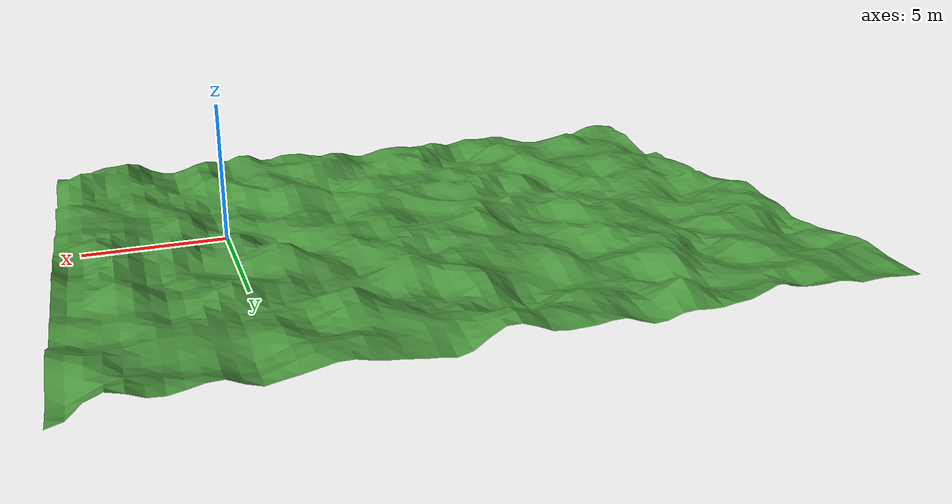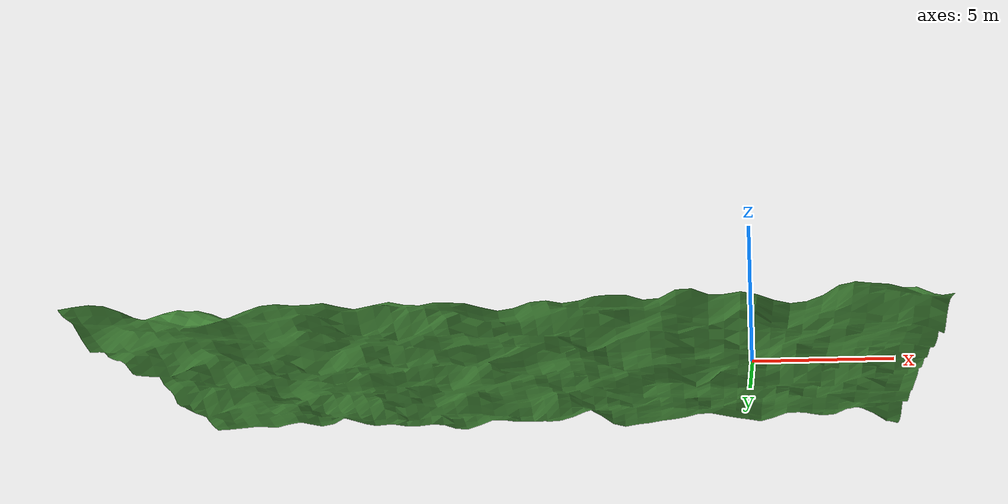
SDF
<?xml version= "1.0" ?>
<sdf version= "1.5">
	<model name= "rough_terrain">
		<static>true</static>
		<link name= "link" >
			<collision name = "collision">
				<geometry>
					<mesh>
						<uri>model://Rough_terrain/meshes/rough_terrain.stl</uri>
						<scale>1 1 1</scale>
					</mesh>
				</geometry>
				<surface>
					<friction>
						<ode>
							<mu>100</mu>
							<mu2>50</mu2>
						</ode>
					</friction>
				</surface>
			</collision>
			<visual name= "visual">
				<geometry>
					<mesh>
						<uri>model://Rough_terrain/meshes/rough_terrain.stl</uri>
						<scale>1 1 1</scale>
					</mesh>
				</geometry>
				<material>
					<script>
						<uri>file://media/materials/scripts/gazebo.material</uri>
						<name>Gazebo/Grass</name>
					</script>
				</material>
			</visual>
		</link>
	</model>
</sdf>
